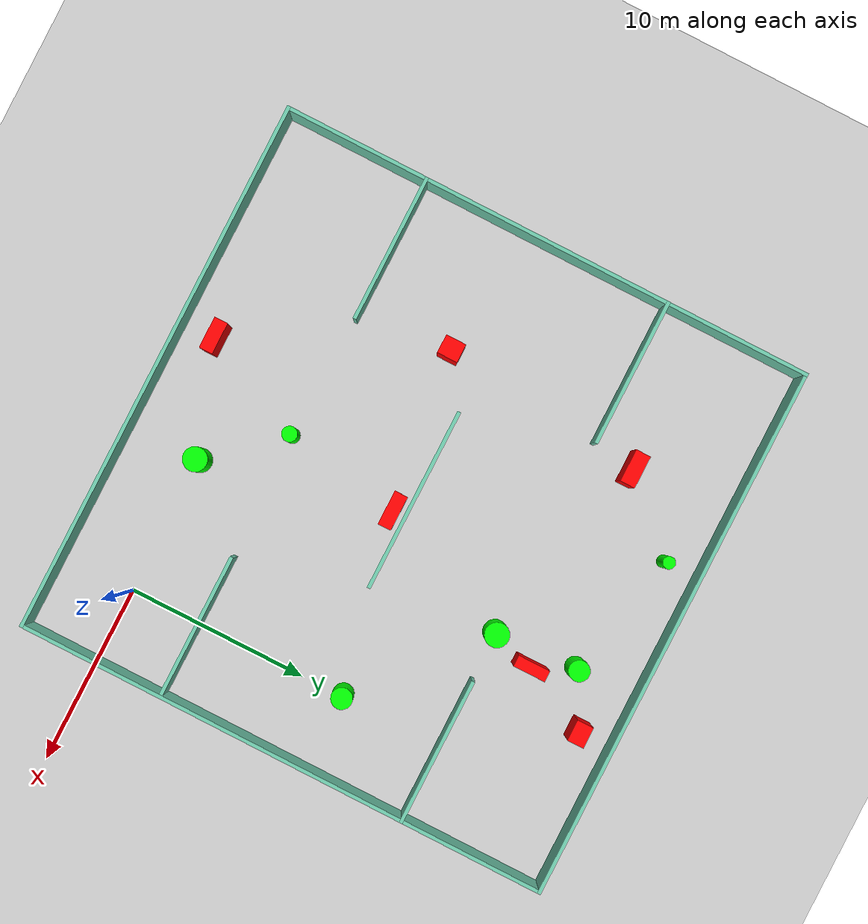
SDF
<sdf version="1.7">
 <world name="default">
  <light name="sun" type="directional">
   <pose>0 0 10 0 -0 0</pose>
   <diffuse>0.8 0.8 0.8 1</diffuse>
   <specular>0.2 0.2 0.2 1</specular>
   <attenuation>
    <range>1000</range>
    <constant>0.9</constant>
    <linear>0.01</linear>
    <quadratic>0.001</quadratic>
   </attenuation>
   <direction>-0.5 0.1 -0.9</direction>
   <spot><inner_angle>0</inner_angle><outer_angle>0</outer_angle><falloff>0</falloff></spot>
  </light>
  <model name="ground_plane">
   <static>1</static>
   <link name="link">
    <collision name="collision">
     <geometry><plane><normal>0 0 1</normal><size>100 100</size></plane></geometry>
     <surface>
      <contact><collide_bitmask>65535</collide_bitmask></contact>
      <friction><ode><mu>100</mu><mu2>50</mu2></ode></friction>
     </surface>
    </collision>
    <visual name="visual">
     <cast_shadows>0</cast_shadows>
     <geometry><plane><normal>0 0 1</normal><size>100 100</size></plane></geometry>
     <material>
      <script><uri>file://media/materials/scripts/gazebo.material</uri><name>Gazebo/Grey</name></script>
     </material>
    </visual>
   </link>
  </model>
  <gravity>0 0 -9.8</gravity>
  <magnetic_field>6e-06 2.3e-05 -4.2e-05</magnetic_field>
  <atmosphere type="adiabatic"/>
  <physics type="ode">
   <max_step_size>0.001</max_step_size>
   <real_time_factor>1</real_time_factor>
   <real_time_update_rate>1000</real_time_update_rate>
  </physics>
  <scene><ambient>0.4 0.4 0.4 1</ambient><background>0.7 0.7 0.7 1</background><shadows>1</shadows></scene>
  <spherical_coordinates>
   <surface_model>EARTH_WGS84</surface_model>
   <latitude_deg>0</latitude_deg>
   <longitude_deg>0</longitude_deg>
   <elevation>0</elevation>
   <heading_deg>0</heading_deg>
  </spherical_coordinates>
  <model name="my_base_walls">
   <link name="Wall_10">
    <collision name="Wall_10_Collision">
     <geometry><box><size>8.2 0.2 2.5</size></box></geometry>
     <pose>0 0 1.25 0 -0 0</pose>
    </collision>
    <visual name="Wall_10_Visual">
     <pose>0 0 1.25 0 -0 0</pose>
     <geometry><box><size>8.2 0.2 2.5</size></box></geometry>
     <material>
      <script><uri>file://media/materials/scripts/gazebo.material</uri><name>Gazebo/Grey</name></script>
      <ambient>0.435294 0.796078 0.67451 1</ambient>
     </material>
     <meta><layer>0</layer></meta>
    </visual>
    <pose>-11 -7 0 0 -0 0</pose>
   </link>
   <link name="Wall_12">
    <collision name="Wall_12_Collision">
     <geometry><box><size>8.2 0.2 2.5</size></box></geometry>
     <pose>0 0 1.25 0 -0 0</pose>
    </collision>
    <visual name="Wall_12_Visual">
     <pose>0 0 1.25 0 -0 0</pose>
     <geometry><box><size>8.2 0.2 2.5</size></box></geometry>
     <material>
      <script><uri>file://media/materials/scripts/gazebo.material</uri><name>Gazebo/Grey</name></script>
      <ambient>0.435294 0.796078 0.67451 1</ambient>
     </material>
     <meta><layer>0</layer></meta>
    </visual>
    <pose>-11 7 0 0 -0 0</pose>
   </link>
   <link name="Wall_14">
    <collision name="Wall_14_Collision">
     <geometry><box><size>8.2 0.2 2.5</size></box></geometry>
     <pose>0 0 1.25 0 -0 0</pose>
    </collision>
    <visual name="Wall_14_Visual">
     <pose>0 0 1.25 0 -0 0</pose>
     <geometry><box><size>8.2 0.2 2.5</size></box></geometry>
     <material>
      <script><uri>file://media/materials/scripts/gazebo.material</uri><name>Gazebo/Grey</name></script>
      <ambient>0.435294 0.796078 0.67451 1</ambient>
     </material>
     <meta><layer>0</layer></meta>
    </visual>
    <pose>11 7 0 0 -0 3.14159</pose>
   </link>
   <link name="Wall_16">
    <collision name="Wall_16_Collision">
     <geometry><box><size>10.2 0.2 2.5</size></box></geometry>
     <pose>0 0 1.25 0 -0 0</pose>
    </collision>
    <visual name="Wall_16_Visual">
     <pose>0 0 1.25 0 -0 0</pose>
     <geometry><box><size>10.2 0.2 2.5</size></box></geometry>
     <material>
      <script><uri>file://media/materials/scripts/gazebo.material</uri><name>Gazebo/Grey</name></script>
      <ambient>0.435294 0.796078 0.67451 1</ambient>
     </material>
     <meta><layer>0</layer></meta>
    </visual>
    <pose>0 0 0 0 -0 3.14159</pose>
   </link>
   <link name="Wall_2">
    <collision name="Wall_2_Collision">
     <geometry><box><size>30.2 0.2 2.5</size></box></geometry>
     <pose>0 0 1.25 0 -0 0</pose>
    </collision>
    <visual name="Wall_2_Visual">
     <pose>0 0 1.25 0 -0 0</pose>
     <geometry><box><size>30.2 0.2 2.5</size></box></geometry>
     <material>
      <script><uri>file://media/materials/scripts/gazebo.material</uri><name>Gazebo/Grey</name></script>
      <ambient>0.435294 0.796078 0.67451 1</ambient>
     </material>
     <meta><layer>0</layer></meta>
    </visual>
    <pose>0 -15 0 0 -0 3.14159</pose>
   </link>
   <link name="Wall_3">
    <collision name="Wall_3_Collision">
     <geometry><box><size>30.2 0.2 2.5</size></box></geometry>
     <pose>0 0 1.25 0 -0 0</pose>
    </collision>
    <visual name="Wall_3_Visual">
     <pose>0 0 1.25 0 -0 0</pose>
     <geometry><box><size>30.2 0.2 2.5</size></box></geometry>
     <material>
      <script><uri>file://media/materials/scripts/gazebo.material</uri><name>Gazebo/Grey</name></script>
      <ambient>0.435294 0.796078 0.67451 1</ambient>
     </material>
     <meta><layer>0</layer></meta>
    </visual>
    <pose>-15 0 0 0 -0 1.5708</pose>
   </link>
   <link name="Wall_4">
    <collision name="Wall_4_Collision">
     <geometry><box><size>30.2 0.2 2.5</size></box></geometry>
     <pose>0 0 1.25 0 -0 0</pose>
    </collision>
    <visual name="Wall_4_Visual">
     <pose>0 0 1.25 0 -0 0</pose>
     <geometry><box><size>30.2 0.2 2.5</size></box></geometry>
     <material>
      <script><uri>file://media/materials/scripts/gazebo.material</uri><name>Gazebo/Grey</name></script>
      <ambient>0.435294 0.796078 0.67451 1</ambient>
     </material>
     <meta><layer>0</layer></meta>
    </visual>
    <pose>0 15 0 0 -0 0</pose>
   </link>
   <link name="Wall_6">
    <collision name="Wall_6_Collision">
     <geometry><box><size>30.2 0.2 2.5</size></box></geometry>
     <pose>0 0 1.25 0 -0 0</pose>
    </collision>
    <visual name="Wall_6_Visual">
     <pose>0 0 1.25 0 -0 0</pose>
     <geometry><box><size>30.2 0.2 2.5</size></box></geometry>
     <material>
      <script><uri>file://media/materials/scripts/gazebo.material</uri><name>Gazebo/Grey</name></script>
      <ambient>0.435294 0.796078 0.67451 1</ambient>
     </material>
     <meta><layer>0</layer></meta>
    </visual>
    <pose>15 0 0 0 -0 1.5708</pose>
   </link>
   <link name="Wall_8">
    <collision name="Wall_8_Collision">
     <geometry><box><size>8.2 0.2 2.5</size></box></geometry>
     <pose>0 0 1.25 0 -0 0</pose>
    </collision>
    <visual name="Wall_8_Visual">
     <pose>0 0 1.25 0 -0 0</pose>
     <geometry><box><size>8.2 0.2 2.5</size></box></geometry>
     <material>
      <script><uri>file://media/materials/scripts/gazebo.material</uri><name>Gazebo/Grey</name></script>
      <ambient>0.435294 0.796078 0.67451 1</ambient>
     </material>
     <meta><layer>0</layer></meta>
    </visual>
    <pose>11 -7 0 0 -0 3.14159</pose>
   </link>
   <static>1</static>
   <pose>-11 11 0 0 -0 0</pose>
  </model>
  <model name="cylinder1">
   <static>1</static>
   <link name="link">
    <inertial>
     <mass>1</mass>
     <inertia><ixx>0.5</ixx><ixy>0</ixy><ixz>0</ixz><iyy>0.5</iyy><iyz>0</iyz><izz>1</izz></inertia>
    </inertial>
    <collision name="collision">
     <geometry><cylinder><radius>0.5745981819799298</radius><length>2.5</length></cylinder></geometry>
    </collision>
    <visual name="visual">
     <geometry><cylinder><radius>0.5745981819799298</radius><length>2.5</length></cylinder></geometry>
     <material>
      <ambient>0 1 0 1</ambient>
      <diffuse>0 1 0 1</diffuse>
      <specular>0.1 0.1 0.1 1</specular>
      <emissive>0 0 0 0</emissive>
     </material>
    </visual>
   </link>
   <pose>-7.070762822982193 22.605868189145117 1.25 0 0 0</pose>
  </model>
  <model name="cylinder2">
   <static>1</static>
   <link name="link">
    <inertial>
     <mass>1</mass>
     <inertia><ixx>0.5</ixx><ixy>0</ixy><ixz>0</ixz><iyy>0.5</iyy><iyz>0</iyz><izz>1</izz></inertia>
    </inertial>
    <collision name="collision">
     <geometry><cylinder><radius>0.42196537546558416</radius><length>2.5</length></cylinder></geometry>
    </collision>
    <visual name="visual">
     <geometry><cylinder><radius>0.42196537546558416</radius><length>2.5</length></cylinder></geometry>
     <material>
      <ambient>0 1 0 1</ambient>
      <diffuse>0 1 0 1</diffuse>
      <specular>0.1 0.1 0.1 1</specular>
      <emissive>0 0 0 0</emissive>
     </material>
    </visual>
   </link>
   <pose>-11.090129731008286 3.743812800610832 1.25 0 0 0</pose>
  </model>
  <model name="cylinder3">
   <static>1</static>
   <link name="link">
    <inertial>
     <mass>1</mass>
     <inertia><ixx>0.5</ixx><ixy>0</ixy><ixz>0</ixz><iyy>0.5</iyy><iyz>0</iyz><izz>1</izz></inertia>
    </inertial>
    <collision name="collision">
     <geometry><cylinder><radius>0.6693607119738227</radius><length>2.5</length></cylinder></geometry>
    </collision>
    <visual name="visual">
     <geometry><cylinder><radius>0.6693607119738227</radius><length>2.5</length></cylinder></geometry>
     <material>
      <ambient>0 1 0 1</ambient>
      <diffuse>0 1 0 1</diffuse>
      <specular>0.1 0.1 0.1 1</specular>
      <emissive>0 0 0 0</emissive>
     </material>
    </visual>
   </link>
   <pose>-6.7797521762857045 17.989296308599133 1.25 0 0 0</pose>
  </model>
  <model name="cylinder4">
   <static>1</static>
   <link name="link">
    <inertial>
     <mass>1</mass>
     <inertia><ixx>0.5</ixx><ixy>0</ixy><ixz>0</ixz><iyy>0.5</iyy><iyz>0</iyz><izz>1</izz></inertia>
    </inertial>
    <collision name="collision">
     <geometry><cylinder><radius>0.5796865514386025</radius><length>2.5</length></cylinder></geometry>
    </collision>
    <visual name="visual">
     <geometry><cylinder><radius>0.5796865514386025</radius><length>2.5</length></cylinder></geometry>
     <material>
      <ambient>0 1 0 1</ambient>
      <diffuse>0 1 0 1</diffuse>
      <specular>0.1 0.1 0.1 1</specular>
      <emissive>0 0 0 0</emissive>
     </material>
    </visual>
   </link>
   <pose>-0.20882973839200503 12.369570957957528 1.25 0 0 0</pose>
  </model>
  <model name="cylinder5">
   <static>1</static>
   <link name="link">
    <inertial>
     <mass>1</mass>
     <inertia><ixx>0.5</ixx><ixy>0</ixy><ixz>0</ixz><iyy>0.5</iyy><iyz>0</iyz><izz>1</izz></inertia>
    </inertial>
    <collision name="collision">
     <geometry><cylinder><radius>0.6619211939872204</radius><length>2.5</length></cylinder></geometry>
    </collision>
    <visual name="visual">
     <geometry><cylinder><radius>0.6619211939872204</radius><length>2.5</length></cylinder></geometry>
     <material>
      <ambient>0 1 0 1</ambient>
      <diffuse>0 1 0 1</diffuse>
      <specular>0.1 0.1 0.1 1</specular>
      <emissive>0 0 0 0</emissive>
     </material>
    </visual>
   </link>
   <pose>-7.707575564412521 0.011185783003331728 1.25 0 0 0</pose>
  </model>
  <model name="cylinder6">
   <static>1</static>
   <link name="link">
    <inertial>
     <mass>1</mass>
     <inertia><ixx>0.5</ixx><ixy>0</ixy><ixz>0</ixz><iyy>0.5</iyy><iyz>0</iyz><izz>1</izz></inertia>
    </inertial>
    <collision name="collision">
     <geometry><cylinder><radius>0.34186580341184486</radius><length>2.5</length></cylinder></geometry>
    </collision>
    <visual name="visual">
     <geometry><cylinder><radius>0.34186580341184486</radius><length>2.5</length></cylinder></geometry>
     <material>
      <ambient>0 1 0 1</ambient>
      <diffuse>0 1 0 1</diffuse>
      <specular>0.1 0.1 0.1 1</specular>
      <emissive>0 0 0 0</emissive>
     </material>
    </visual>
   </link>
   <pose>-14.14776288517001 24.166615811868404 1.25 0 0 0</pose>
  </model>
  <model name="box1">
   <static>1</static>
   <link name="link">
    <inertial>
     <mass>1</mass>
     <inertia><ixx>0.083</ixx><ixy>0</ixy><ixz>0</ixz><iyy>0.083</iyy><iyz>0</iyz><izz>0.083</izz></inertia>
    </inertial>
    <collision name="collision">
     <geometry><box><size>1.8191546628289765 0.8330756441912106 2.5</size></box></geometry>
    </collision>
    <visual name="visual">
     <geometry><box><size>1.8191546628289765 0.8330756441912106 2.5</size></box></geometry>
     <material>
      <ambient>1 0 0 1</ambient>
      <diffuse>1 0 0 1</diffuse>
      <specular>0.1 0.1 0.1 1</specular>
      <emissive>0 0 0 0</emissive>
     </material>
    </visual>
    <sensor name="my_contact" type="contact">
     <contact><collision>box_collision</collision><topic>__default_topic__</topic></contact>
    </sensor>
   </link>
   <pose>-17.65591355556729 20.409505699082565 1.25 0 0 0</pose>
  </model>
  <model name="box2">
   <static>1</static>
   <link name="link">
    <inertial>
     <mass>1</mass>
     <inertia><ixx>0.083</ixx><ixy>0</ixy><ixz>0</ixz><iyy>0.083</iyy><iyz>0</iyz><izz>0.083</izz></inertia>
    </inertial>
    <collision name="collision">
     <geometry><box><size>1.9371212776554327 0.7469361482691742 2.5</size></box></geometry>
    </collision>
    <visual name="visual">
     <geometry><box><size>1.9371212776554327 0.7469361482691742 2.5</size></box></geometry>
     <material>
      <ambient>1 0 0 1</ambient>
      <diffuse>1 0 0 1</diffuse>
      <specular>0.1 0.1 0.1 1</specular>
      <emissive>0 0 0 0</emissive>
     </material>
    </visual>
    <sensor name="my_contact" type="contact">
     <contact><collision>box_collision</collision><topic>__default_topic__</topic></contact>
    </sensor>
   </link>
   <pose>-10.017826471333805 10.284456069397656 1.25 0 0 0</pose>
  </model>
  <model name="box3">
   <static>1</static>
   <link name="link">
    <inertial>
     <mass>1</mass>
     <inertia><ixx>0.083</ixx><ixy>0</ixy><ixz>0</ixz><iyy>0.083</iyy><iyz>0</iyz><izz>0.083</izz></inertia>
    </inertial>
    <collision name="collision">
     <geometry><box><size>1.0371625762284302 1.1429891927934244 2.5</size></box></geometry>
    </collision>
    <visual name="visual">
     <geometry><box><size>1.0371625762284302 1.1429891927934244 2.5</size></box></geometry>
     <material>
      <ambient>1 0 0 1</ambient>
      <diffuse>1 0 0 1</diffuse>
      <specular>0.1 0.1 0.1 1</specular>
      <emissive>0 0 0 0</emissive>
     </material>
    </visual>
    <sensor name="my_contact" type="contact">
     <contact><collision>box_collision</collision><topic>__default_topic__</topic></contact>
    </sensor>
   </link>
   <pose>-18.827699646245208 9.1558080361123 1.25 0 0 0</pose>
  </model>
  <model name="box4">
   <static>1</static>
   <link name="link">
    <inertial>
     <mass>1</mass>
     <inertia><ixx>0.083</ixx><ixy>0</ixy><ixz>0</ixz><iyy>0.083</iyy><iyz>0</iyz><izz>0.083</izz></inertia>
    </inertial>
    <collision name="collision">
     <geometry><box><size>1.7681571400066902 0.7537449647003969 2.5</size></box></geometry>
    </collision>
    <visual name="visual">
     <geometry><box><size>1.7681571400066902 0.7537449647003969 2.5</size></box></geometry>
     <material>
      <ambient>1 0 0 1</ambient>
      <diffuse>1 0 0 1</diffuse>
      <specular>0.1 0.1 0.1 1</specular>
      <emissive>0 0 0 0</emissive>
     </material>
    </visual>
    <sensor name="my_contact" type="contact">
     <contact><collision>box_collision</collision><topic>__default_topic__</topic></contact>
    </sensor>
   </link>
   <pose>-13.809494984121773 -2.0646462013964397 1.25 0 0 0</pose>
  </model>
  <model name="box5">
   <static>1</static>
   <link name="link">
    <inertial>
     <mass>1</mass>
     <inertia><ixx>0.083</ixx><ixy>0</ixy><ixz>0</ixz><iyy>0.083</iyy><iyz>0</iyz><izz>0.083</izz></inertia>
    </inertial>
    <collision name="collision">
     <geometry><box><size>0.6220358031707753 1.7997017803948612 2.5</size></box></geometry>
    </collision>
    <visual name="visual">
     <geometry><box><size>0.6220358031707753 1.7997017803948612 2.5</size></box></geometry>
     <material>
      <ambient>1 0 0 1</ambient>
      <diffuse>1 0 0 1</diffuse>
      <specular>0.1 0.1 0.1 1</specular>
      <emissive>0 0 0 0</emissive>
     </material>
    </visual>
    <sensor name="my_contact" type="contact">
     <contact><collision>box_collision</collision><topic>__default_topic__</topic></contact>
    </sensor>
   </link>
   <pose>-6.062790069469303 20.375101549169315 1.25 0 0 0</pose>
  </model>
  <model name="box6">
   <static>1</static>
   <link name="link">
    <inertial>
     <mass>1</mass>
     <inertia><ixx>0.083</ixx><ixy>0</ixy><ixz>0</ixz><iyy>0.083</iyy><iyz>0</iyz><izz>0.083</izz></inertia>
    </inertial>
    <collision name="collision">
     <geometry><box><size>1.1788248395736227 0.9250084451629362 2.5</size></box></geometry>
    </collision>
    <visual name="visual">
     <geometry><box><size>1.1788248395736227 0.9250084451629362 2.5</size></box></geometry>
     <material>
      <ambient>1 0 0 1</ambient>
      <diffuse>1 0 0 1</diffuse>
      <specular>0.1 0.1 0.1 1</specular>
      <emissive>0 0 0 0</emissive>
     </material>
    </visual>
    <sensor name="my_contact" type="contact">
     <contact><collision>box_collision</collision><topic>__default_topic__</topic></contact>
    </sensor>
   </link>
   <pose>-4.209347190162633 24.15103002941837 1.25 0 0 0</pose>
  </model>
 </world>
</sdf>
